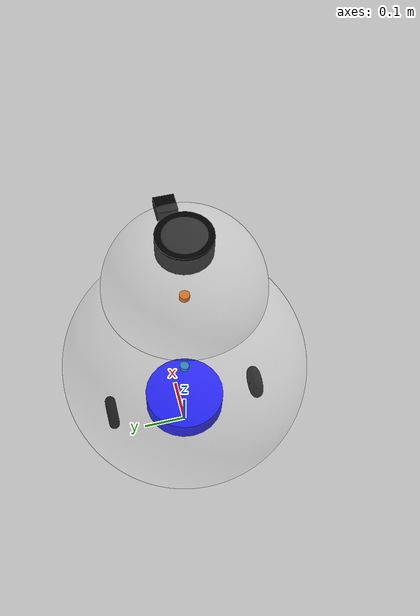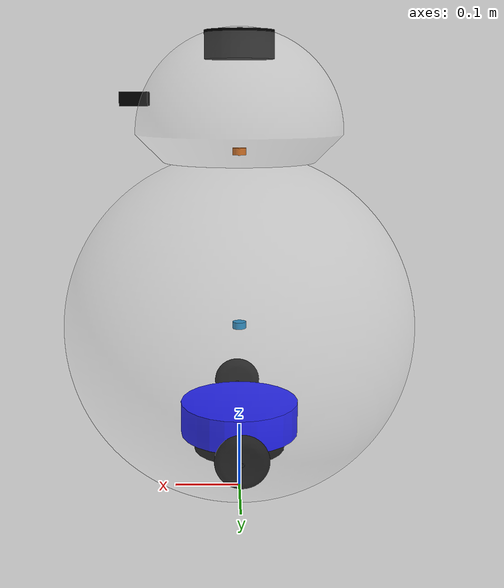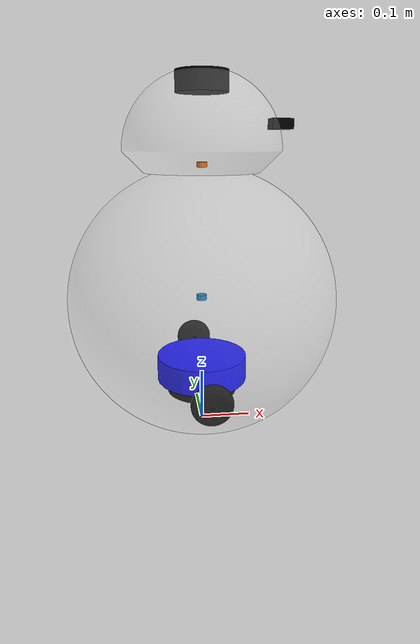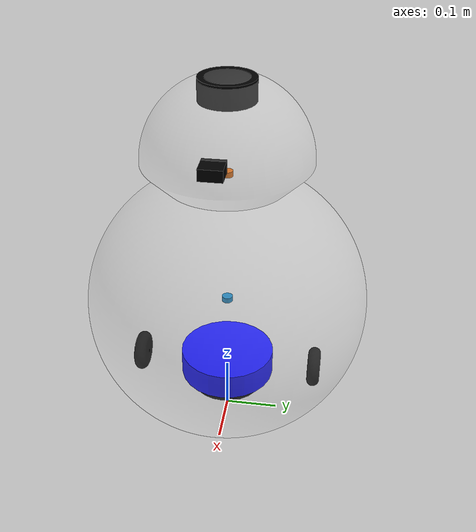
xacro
<?xml version="1.0"?>
<robot name="bb8" xmlns:xacro="http://www.ros.org/wiki/xacro">
  <xacro:include filename="common_properties.xacro" />
  <xacro:include filename="hamster.xacro" />
  <xacro:include filename="sphere.xacro" />
  <xacro:include filename="head.xacro" />
  <xacro:include filename="ros2_control.xacro" />
  <xacro:include filename="sensors.xacro" />
  <xacro:include filename="lidar.xacro" />
  <xacro:include filename="camera.xacro" />
</robot>

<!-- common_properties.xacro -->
<robot xmlns:xacro="http://www.ros.org/wiki/xacro">
  <!-- Constants -->
  <xacro:property name="wheel_radius" value="0.069" /> <!-- Radius of the wheels contact -->
  <xacro:property name="wheel_contact_separation" value="0.3641" /> <!-- Distance between the wheels contact points-->
  <xacro:property name="wheel_separation" value="0.3437" /> <!-- Distance between the wheels -->
  <xacro:property name="sphere_radius_o" value="0.26" /> <!-- Outer sphere radius -->
  <xacro:property name="sphere_radius_i" value="0.255" /> <!-- Inner sphere radius -->

  <!-- Inertia -->
  <xacro:macro name="inertial_sphere" params="mass radius *origin">
      <inertial>
          <xacro:insert_block name="origin"/>
          <mass value="${mass}" />
          <inertia ixx="${(2/5) * mass * (radius*radius)}" ixy="0.0" ixz="0.0"
                  iyy="${(2/5) * mass * (radius*radius)}" iyz="0.0"
                  izz="${(2/5) * mass * (radius*radius)}" />
      </inertial>
  </xacro:macro>
  <xacro:macro name="inertial_cylinder" params="mass length radius *origin">
    <inertial>
        <xacro:insert_block name="origin"/>
        <mass value="${mass}" />
        <inertia ixx="${(1/12) * mass * (3*radius*radius + length*length)}" ixy="0.0" ixz="0.0"
                iyy="${(1/12) * mass * (3*radius*radius + length*length)}" iyz="0.0"
                izz="${(1/2) * mass * (radius*radius)}" />
    </inertial>
  </xacro:macro>

  <xacro:macro name="inertial_box" params="m l w h xyz rpy">
      <inertial>
          <origin xyz="${xyz}" rpy="${rpy}" />
          <mass value="${m}" />
          <inertia ixx="${(m/12) * (h*h + l*l)}" ixy="0" ixz="0"
                    iyy="${(m/12) * (w*w + l*l)}" iyz="0"
                    izz="${(m/12) * (w*w + h*h)}" />
      </inertial>
  </xacro:macro>

  <!-- Materials -->
  <material name="blue">
    <color rgba="0 0 1 1"/>
  </material>
  <material name="black">
    <color rgba="0 0 0 1"/>
  </material>
  <material name="white">
    <color rgba="1 1 1 1"/>
  </material>
  <material name="gray">
    <color rgba="0.5 0.5 0.5 1"/>
  </material>

  <gazebo reference="base_link">
    <material>Gazebo/Blue</material>
  </gazebo>

  <gazebo reference="left_wheel">
    <material>Gazebo/Black</material>
  </gazebo>

  <gazebo reference="right_wheel">
    <material>Gazebo/Black</material>
  </gazebo>

  <gazebo reference="sphere_link">
    <material>Gazebo/White</material>
  </gazebo>
</robot>

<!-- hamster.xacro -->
<robot xmlns:xacro="http://www.ros.org/wiki/xacro">

  <!-- Base Footprint -->
  <!-- This frame is always at the fround, represents robot position and orientation in 2d -->
  <link name="base_footprint" />

  <link name="sphere_center" />

  <!-- Base Link -->
  <link name="base_link">
    <visual>
      <origin xyz="0 0 0" rpy="0 0 0"/>
      <geometry>
        <cylinder length="0.05" radius="0.09" />
      </geometry>
      <material name="blue"/>
    </visual>
    <xacro:inertial_cylinder mass="0.5" length="0.05" radius="0.09">
      <origin xyz="0 0 0" rpy="0 0 0"/>
    </xacro:inertial_cylinder>
  </link>

  <!-- Counterweight -->
  <link name="counterweight">
    <visual>
      <geometry>
        <cylinder length="0.04" radius="0.07" />
      </geometry>
      <material name="black"/>
    </visual>
    <xacro:inertial_cylinder mass="1.0" length="0.04" radius="0.05">
      <origin xyz="0 0 0" rpy="0 0 0" />
    </xacro:inertial_cylinder>
  </link>

  <!-- Left Wheel -->
  <link name="left_wheel">
    <visual>
      <origin xyz="0 0 0" rpy="${pi/2} 0 0"/>
      <geometry>
        <mesh filename="file:///$(find bb8_description)/meshes/wheel.stl" />
      </geometry>
      <material name="black"/>
    </visual>
    <collision>
      <origin xyz="0 0 0" rpy="${pi/2} 0 0"/>
      <geometry>
        <mesh filename="file:///$(find bb8_description)/meshes/wheel.stl" />
      </geometry>
    </collision>
    <xacro:inertial_sphere mass="0.05" radius="0.076">
      <origin xyz="0 0 0" rpy="${pi/2} 0 0"/>
    </xacro:inertial_sphere>
  </link>

  <!-- Right Wheel -->
  <link name="right_wheel">
    <visual>
      <origin xyz="0 0 0" rpy="${pi/2} 0 0"/>
      <geometry>
        <mesh filename="file:///$(find bb8_description)/meshes/wheel.stl" />
      </geometry>
      <material name="black"/>
    </visual>
    <collision>
      <origin xyz="0 0 0" rpy="${pi/2} 0 0"/>
      <geometry>
        <mesh filename="file:///$(find bb8_description)/meshes/wheel.stl" />
      </geometry>
    </collision>
    <xacro:inertial_sphere mass="0.05" radius="0.076">
      <origin xyz="0 0 0" rpy="${pi/2} 0 0"/>
    </xacro:inertial_sphere>
  </link>

  <!-- Joints -->
  <joint name="base_footprint_joint" type="fixed">
    <parent link="base_footprint" />
    <child link="sphere_center" />
    <origin xyz="0 0 ${sphere_radius_o}" rpy="0 0 0"/>
  </joint>

  <joint name="base_joint" type="fixed">
    <parent link="sphere_center" />
    <child link="base_link" />
    <origin xyz="0 0 -0.1458" rpy="0 0 0"/>
  </joint>

  <joint name="counterweight_joint" type="fixed">
    <parent link="base_link" />
    <child link="counterweight" />
    <origin xyz="0 0 -0.03" rpy="0 0 0"/>
  </joint>

  <joint name="left_wheel_joint" type="continuous">
    <parent link="base_link"/>
    <child link="left_wheel"/>
    <origin xyz="0 ${wheel_separation/2}  0" rpy="0 0 0"/>
    <axis xyz="0 1 0"/>
  </joint>

  <joint name="right_wheel_joint" type="continuous">
    <parent link="base_link"/>
    <child link="right_wheel"/>
    <origin xyz="0 -${wheel_separation/2} 0" rpy="0 0 0"/>
    <axis xyz="0 1 0"/>
  </joint>

  <!-- Collision Tuning for Robot and Sphere -->
  <gazebo reference="left_wheel">
    <self_collide>true</self_collide>
    <surface>
      <contact>
        <ode>
          <min_depth>0.001</min_depth>
          <margin>0.001</margin>
        </ode>
        <collide_without_contact>false</collide_without_contact>
        <stiffness>1e6</stiffness>
        <damping>2e3</damping>
      </contact>
      <friction>
        <ode>
          <mu>1.0</mu>
          <mu2>1.0</mu2>
        </ode>
      </friction>
    </surface>
  </gazebo>

  <gazebo reference="right_wheel">
    <self_collide>true</self_collide>
    <surface>
      <contact>
        <ode>
          <min_depth>0.001</min_depth>
          <margin>0.001</margin>
        </ode>
        <collide_without_contact>false</collide_without_contact>
        <stiffness>1e6</stiffness>
        <damping>2e3</damping>
      </contact>
      <friction>
        <ode>
          <mu>1.0</mu>
          <mu2>1.0</mu2>
        </ode>
      </friction>
    </surface>
  </gazebo>

</robot>

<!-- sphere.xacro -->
<robot xmlns:xacro="http://www.ros.org/wiki/xacro">

  <!-- Dummy links for rotational joints -->
  <link name="sphere_yaw">
    <inertial>
      <mass value="0.001"/>
      <inertia ixx="0.0001" iyy="0.0001" izz="0.0001" ixy="0" ixz="0" iyz="0"/>
    </inertial>
  </link>

  <link name="sphere_pitch">
    <inertial>
      <mass value="0.001"/>
      <inertia ixx="0.0001" iyy="0.0001" izz="0.0001" ixy="0" ixz="0" iyz="0"/>
    </inertial>
  </link>

  <!-- Sphere Shell Link -->
  <link name="sphere">
    <visual>
      <geometry>
        <mesh filename="file:///$(find bb8_description)/meshes/sphere.stl"/>
      </geometry>
      <material name="white_transparent">
        <color rgba="1 1 1 0.2"/>
      </material>
    </visual>
    <collision>
      <geometry>
        <mesh filename="file:///$(find bb8_description)/meshes/sphere.stl"/>
      </geometry>
    </collision>
    <inertial>
      <mass value="0.5"/>
      <inertia ixx="0.2" iyy="0.2" izz="0.2" ixy="0.0" ixz="0.0" iyz="0.0"/>
    </inertial>
  </link>

  <!-- Continuous joints -->
  <joint name="sphere_yaw_joint" type="continuous">
    <parent link="sphere_center"/>
    <child link="sphere_yaw"/>
    <axis xyz="0 0 1"/>
    <origin xyz="0 0 0" rpy="0 0 0"/>
  </joint>

  <joint name="sphere_pitch_joint" type="continuous">
    <parent link="sphere_yaw"/>
    <child link="sphere_pitch"/>
    <axis xyz="0 1 0"/>
    <origin xyz="0 0 0" rpy="0 0 0"/>
  </joint>

  <joint name="sphere_roll_joint" type="continuous">
    <parent link="sphere_pitch"/>
    <child link="sphere"/>
    <axis xyz="1 0 0"/>
    <origin xyz="0 0 0" rpy="0 0 0"/>
  </joint>

  <gazebo reference="sphere">
    <mu>10.0</mu>
    <mu2>10.0</mu2>
    <self_collide>false</self_collide>
    <surface>
      <contact>
        <ode>
          <min_depth>1</min_depth>
          <margin>1</margin>
        </ode>
        <stiffness>1e-10</stiffness>
        <damping>1e10</damping>
      </contact>
    </surface>
  </gazebo>

</robot>

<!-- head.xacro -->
<robot xmlns:xacro="http://www.ros.org/wiki/xacro">

  <link name="head">
    <visual>
      <origin xyz="0 0 -0.26" rpy="0 0 0"/>
      <geometry>
        <mesh filename="file:///$(find bb8_description)/meshes/head.stl" scale="0.001 0.001 0.001"/>
      </geometry>
      <material name="white_transparent">
        <color rgba="1 1 1 0.2"/>
      </material>
    </visual>
    <collision>
      <origin xyz="0 0 -0.26" rpy="0 0 0"/>
      <geometry>
        <mesh filename="file:///$(find bb8_description)/meshes/head.stl" scale="0.001 0.001 0.001"/>
      </geometry>
    </collision>
    <xacro:inertial_cylinder mass="0.5" length="0.15" radius="0.15">
        <origin xyz="0 0 0.045" rpy="0 0 0"/>
    </xacro:inertial_cylinder>
  </link>

  <!-- Intermediate links for ball joint -->
  <link name="head_x_link">
    <inertial>
      <mass value="0.01"/>
      <inertia ixx="0.001" iyy="0.001" izz="0.001" ixy="0.0" ixz="0.0" iyz="0.0"/>
    </inertial>
  </link>

  <link name="head_y_link">
    <inertial>
      <mass value="0.01"/>
      <inertia ixx="0.001" iyy="0.001" izz="0.001" ixy="0.0" ixz="0.0" iyz="0.0"/>
    </inertial>
  </link>

  <!-- Revolute joints with limits for full ball joint motion -->
  <joint name="head_x_joint" type="revolute">
    <parent link="sphere_center"/>
    <child link="head_x_link"/>
    <origin xyz="0 0 0" rpy="0 0 0"/>
    <axis xyz="1 0 0"/>
    <limit lower="-${pi/9}" upper="${pi/9}" effort="10" velocity="1.0"/>
    <dynamics damping="0.1" friction="0.01"/>
  </joint>

  <joint name="head_y_joint" type="revolute">
    <parent link="head_x_link"/>
    <child link="head_y_link"/>
    <origin xyz="0 0 0" rpy="0 0 0"/>
    <axis xyz="0 1 0"/>
    <limit lower="-${pi/9}" upper="${pi/9}" effort="10" velocity="1.0"/>
    <dynamics damping="0.1" friction="0.01"/>
  </joint>

  <!-- Continuous revolute joint for z -->
  <joint name="head_z_joint" type="continuous">
    <parent link="head_y_link"/>
    <child link="head"/>
    <origin xyz="0 0 0.26" rpy="0 0 0"/>
    <axis xyz="0 0 1"/>
    <dynamics damping="0.1" friction="0.01"/>
  </joint>

</robot>

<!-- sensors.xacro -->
<robot xmlns:xacro="http://www.ros.org/wiki/xacro">
  <!-- IMU Macro Definition -->
  <xacro:macro name="imu_sensor" params="parent_link sensor_name">

    <!-- IMU Link -->
    <link name="${sensor_name}_link" >
      <visual>
      <geometry>
        <cylinder length="0.01" radius="0.01" />
      </geometry>
      </visual>
    </link>

    <!-- IMU Joint -->
    <joint name="${sensor_name}_joint" type="fixed">
      <parent link="${parent_link}"/>
      <child link="${sensor_name}_link"/>
      <origin xyz="0 0 0" rpy="0 0 0"/>
    </joint>

    <!-- Gazebo IMU Plugin -->
    <gazebo reference="${sensor_name}_link">
      <sensor name="${sensor_name}" type="imu">
        <always_on>true</always_on>
        <update_rate>50.0</update_rate>
        <visualize>true</visualize>
        <plugin name="gazebo_ros_${sensor_name}" filename="libgazebo_ros_imu_sensor.so">
          <ros>
            <remapping>~/out:=${sensor_name}</remapping>
          </ros>
          <frame_name>${sensor_name}_link</frame_name>
          <enable_orientation>true</enable_orientation>
          <enable_angular_velocity>true</enable_angular_velocity>
          <enable_linear_acceleration>true</enable_linear_acceleration>
          <imu>
            <noise>
              <type>gaussian</type>
              <accel>
                <mean>0.0</mean>
                <stddev>0.01</stddev>
              </accel>
              <gyro>
                <mean>0.0</mean>
                <stddev>0.001</stddev>
              </gyro>
            </noise>
          </imu>
        </plugin>
      </sensor>
    </gazebo>
  </xacro:macro>

  <xacro:imu_sensor parent_link="sphere_center" sensor_name="imu_base"/>
  <xacro:imu_sensor parent_link="head" sensor_name="imu_head"/>
</robot>

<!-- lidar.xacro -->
<robot xmlns:xacro="http://www.ros.org/wiki/xacro">
    <joint name="lidar_joint" type="fixed">
        <parent link="head"/>
        <child link="lidar"/>
        <origin xyz="0 0 0.15" rpy="0 0 0"/>
    </joint>

    <link name="lidar">
        <visual>
            <geometry>
                <cylinder radius="0.05" length="0.04"/>
            </geometry>
            <material name="black"/>
        </visual>
        <inertial>
            <mass value="0.1"/>
            <origin xyz="0 0 0" rpy="0 0 0"/>
            <inertia ixx="0.001" iyy="0.001" izz="0.001" ixy="0" ixz="0" iyz="0"/>
        </inertial>
    </link>

    <gazebo reference="lidar">
        <sensor name="lidar_sensor" type="ray">
            <pose>0 0 0 0 0 0</pose>
            <visualize>false</visualize>
            <update_rate>10.0</update_rate>
            <ray>
                <scan>
                    <horizontal>
                        <samples>360</samples>
                        <resolution>1</resolution>
                        <min_angle>${-pi}</min_angle>
                        <max_angle>${pi}</max_angle>
                    </horizontal>
                </scan>
                <range>
                    <min>0.1</min>
                    <max>12.0</max>
                    <resolution>0.01</resolution>
                </range>
            </ray>
            <plugin name="lidar_plugin" filename="libgazebo_ros_ray_sensor.so">
                <ros>
                    <remapping>~/out:=scan</remapping>
                </ros>
                <output_type>sensor_msgs/LaserScan</output_type>
                <frame_name>lidar</frame_name>
            </plugin>
        </sensor>
    </gazebo>

</robot>

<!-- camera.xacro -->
<robot xmlns:xacro="http://www.ros.org/wiki/xacro">

  <!-- Fixed joint to attach the camera to the front of the head -->
  <joint name="camera_joint" type="fixed">
    <parent link="head"/>
    <child link="camera"/>
    <origin xyz="0.15 0 0.075" rpy="0 0 0"/>
  </joint>

  <!-- Camera Link Definition -->
  <link name="camera">
    <!-- Visual Representation -->
    <visual>
      <geometry>
        <!-- Simple box to represent a camera -->
        <box size="0.04 0.04 0.02"/>
      </geometry>
      <material name="black"/>
    </visual>

    <!-- Inertial Properties (lightweight sensor) -->
    <inertial>
      <mass value="0.05"/> <!-- Lighter than lidar -->
      <origin xyz="0 0 0"/>
      <inertia ixx="0.0001" iyy="0.0001" izz="0.0001" ixy="0" ixz="0" iyz="0"/>
    </inertial>
  </link>

  <!-- Gazebo Sensor Plugin -->
  <gazebo reference="camera">
    <sensor name="camera_sensor" type="camera">
      <visualize>true</visualize>
      <update_rate>30.0</update_rate> <!-- Higher rate for smoother video -->

      <!-- Camera Properties -->
      <camera>
        <horizontal_fov>${pi/2}</horizontal_fov> <!-- 90 degrees FOV -->
        <image>
          <width>640</width>
          <height>480</height>
          <format>R8G8B8</format>
        </image>
        <clip>
          <near>0.02</near>
          <far>10.0</far>
        </clip>
      </camera>

      <!-- ROS Integration -->
      <plugin name="camera_plugin" filename="libgazebo_ros_camera_sensor.so">
        <ros>
          <remapping>~/image:=image_raw</remapping>
        </ros>
        <frame_name>camera</frame_name>
        <topic_name>camera/image_raw</topic_name>
        <hack_baseline>0.07</hack_baseline> <!-- Optional for stereo -->
      </plugin>
    </sensor>
  </gazebo>

</robot>
